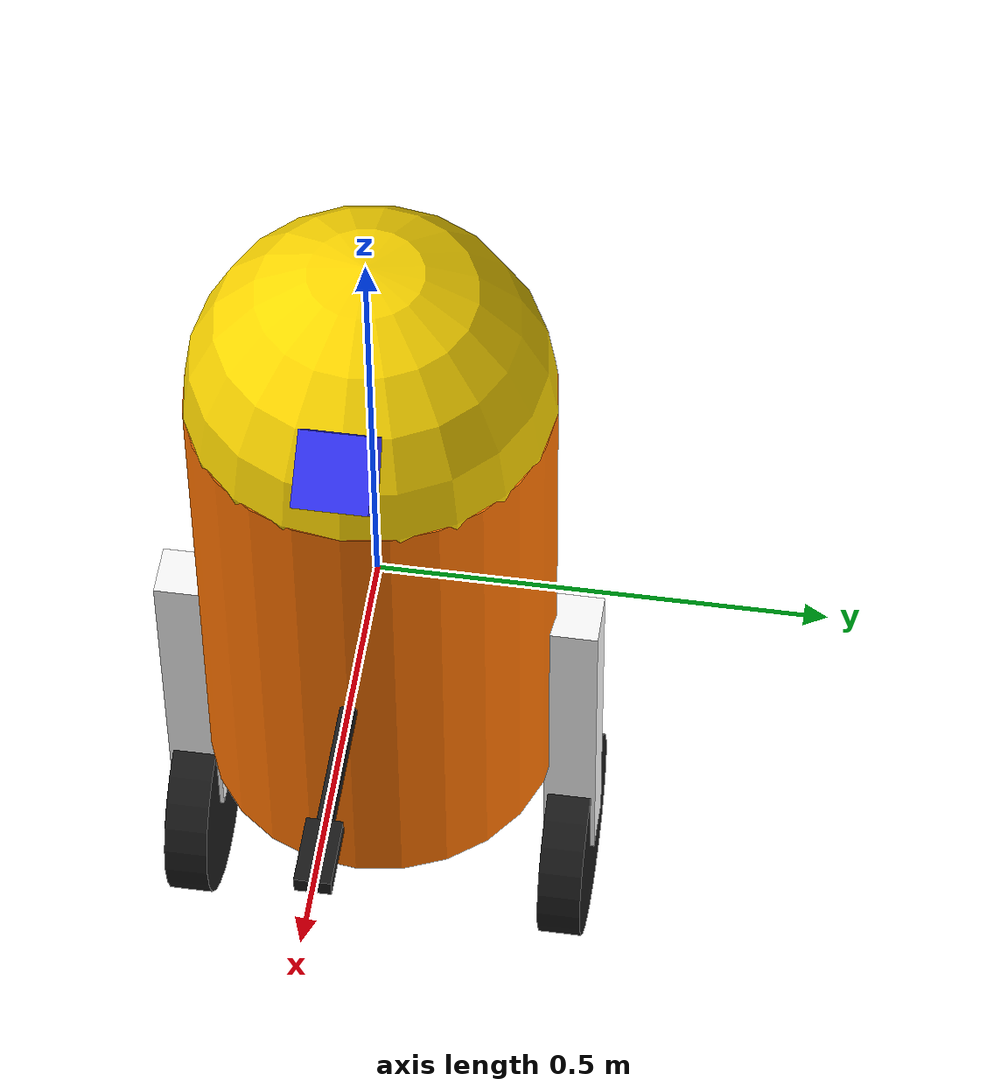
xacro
<?xml version="1.0"?>
<robot name="r2d2" xmlns:xacro="http://ros.org/wiki/xacro">

  <material name="white">
    <color rgba="1 1 1 1"/>
  </material>
  <material name="black">
    <color rgba="0.1 0.1 0.1 1"/>
  </material>
  <material name="blue">
    <color rgba="0.2 0.2 1 1"/>
  </material>
  <material name="yellow">
    <color rgba="1 0.85 0 1"/>
  </material>
  <material name="orange">
    <color rgba="1 0.45 0 1"/>
  </material>

  <!-- ================= BODY ================= -->
  <link name="base_link">
    <visual>
      <geometry>
        <cylinder length="0.6" radius="0.2"/>
      </geometry>
      <material name="orange"/>
    </visual>
    <collision>
      <geometry>
        <cylinder length="0.6" radius="0.2"/>
      </geometry>
    </collision>
    <inertial>
      <mass value="10"/>
      <inertia ixx="0.4" ixy="0" ixz="0" iyy="0.4" iyz="0" izz="0.2"/>
    </inertial>
  </link>

  <!-- ================= HEAD ================= -->
  <joint name="head_swivel" type="continuous">
    <parent link="base_link"/>
    <child link="head"/>
    <axis xyz="0 0 1"/>
    <origin xyz="0 0 0.3"/>
  </joint>

  <link name="head">
    <visual>
      <geometry>
        <sphere radius="0.2"/>
      </geometry>
      <material name="yellow"/>
    </visual>
    <collision>
      <geometry>
        <sphere radius="0.2"/>
      </geometry>
    </collision>
    <inertial>
      <mass value="1"/>
      <inertia ixx="0.01" ixy="0" ixz="0" iyy="0.01" iyz="0" izz="0.01"/>
    </inertial>
  </link>

  <joint name="eye_joint" type="fixed">
    <parent link="head"/>
    <child link="eye"/>
    <origin xyz="0.19 0 0.1" rpy="0 0.7 0"/>
  </joint>

  <link name="eye">
    <visual>
      <geometry>
        <box size="0.08 0.08 0.08"/>
      </geometry>
      <material name="blue"/>
    </visual>
    <collision>
      <geometry>
        <box size="0.08 0.08 0.08"/>
      </geometry>
    </collision>
    <inertial>
      <mass value="0.1"/>
      <inertia ixx="0.0001" ixy="0" ixz="0" iyy="0.0001" iyz="0" izz="0.0001"/>
    </inertial>
  </link>

  <!-- ================= LEGS + WHEELS (macro, left/right) ================= -->
  <xacro:macro name="leg" params="prefix reflect">
    <joint name="${prefix}_leg_joint" type="fixed">
      <parent link="base_link"/>
      <child link="${prefix}_leg"/>
      <origin xyz="0 ${reflect * 0.22} -0.25" rpy="0 0 0"/>
    </joint>

    <link name="${prefix}_leg">
      <visual>
        <geometry>
          <box size="0.06 0.06 0.4"/>
        </geometry>
        <material name="white"/>
      </visual>
      <collision>
        <geometry>
          <box size="0.06 0.06 0.4"/>
        </geometry>
      </collision>
      <inertial>
        <mass value="0.5"/>
        <inertia ixx="0.001" ixy="0" ixz="0" iyy="0.001" iyz="0" izz="0.001"/>
      </inertial>
    </link>

    <joint name="${prefix}_wheel_joint" type="continuous">
      <parent link="${prefix}_leg"/>
      <child link="${prefix}_wheel"/>
      <origin xyz="0 0 -0.22" rpy="1.5708 0 0"/>
      <axis xyz="0 0 1"/>
    </joint>

    <link name="${prefix}_wheel">
      <visual>
        <geometry>
          <cylinder length="0.05" radius="0.12"/>
        </geometry>
        <material name="black"/>
      </visual>
      <collision>
        <geometry>
          <cylinder length="0.05" radius="0.12"/>
        </geometry>
      </collision>
      <inertial>
        <mass value="0.3"/>
        <inertia ixx="0.001" ixy="0" ixz="0" iyy="0.001" iyz="0" izz="0.001"/>
      </inertial>
    </link>
  </xacro:macro>

  <xacro:leg prefix="left" reflect="1"/>
  <xacro:leg prefix="right" reflect="-1"/>

  <!-- ================= GRIPPER ARM ================= -->
  <joint name="gripper_extension" type="prismatic">
    <parent link="base_link"/>
    <child link="gripper_pole"/>
    <limit effort="1000.0" lower="-0.15" upper="0.0" velocity="0.5"/>
    <origin rpy="0 0 0" xyz="0.19 0 0"/>
    <axis xyz="1 0 0"/>
  </joint>

  <link name="gripper_pole">
    <visual>
      <geometry>
        <cylinder length="0.2" radius="0.01"/>
      </geometry>
      <origin rpy="0 1.5708 0" xyz="0.1 0 0"/>
      <material name="black"/>
    </visual>
    <collision>
      <geometry>
        <cylinder length="0.2" radius="0.01"/>
      </geometry>
      <origin rpy="0 1.5708 0" xyz="0.1 0 0"/>
    </collision>
    <inertial>
      <mass value="0.05"/>
      <inertia ixx="0.0001" ixy="0" ixz="0" iyy="0.0001" iyz="0" izz="0.0001"/>
    </inertial>
  </link>

  <joint name="left_gripper_joint" type="revolute">
    <origin rpy="0 0 0" xyz="0.2 0.01 0"/>
    <parent link="gripper_pole"/>
    <child link="left_gripper"/>
    <limit effort="1000.0" lower="0.0" upper="0.548" velocity="0.5"/>
    <axis xyz="0 0 1"/>
  </joint>

  <link name="left_gripper">
    <visual>
      <geometry>
        <box size="0.08 0.02 0.02"/>
      </geometry>
      <material name="black"/>
    </visual>
    <collision>
      <geometry>
        <box size="0.08 0.02 0.02"/>
      </geometry>
    </collision>
    <inertial>
      <mass value="0.02"/>
      <inertia ixx="0.0001" ixy="0" ixz="0" iyy="0.0001" iyz="0" izz="0.0001"/>
    </inertial>
  </link>

  <joint name="right_gripper_joint" type="revolute">
    <origin rpy="0 0 0" xyz="0.2 -0.01 0"/>
    <parent link="gripper_pole"/>
    <child link="right_gripper"/>
    <limit effort="1000.0" lower="-0.548" upper="0.0" velocity="0.5"/>
    <axis xyz="0 0 1"/>
  </joint>

  <link name="right_gripper">
    <visual>
      <geometry>
        <box size="0.08 0.02 0.02"/>
      </geometry>
      <material name="black"/>
    </visual>
    <collision>
      <geometry>
        <box size="0.08 0.02 0.02"/>
      </geometry>
    </collision>
    <inertial>
      <mass value="0.02"/>
      <inertia ixx="0.0001" ixy="0" ixz="0" iyy="0.0001" iyz="0" izz="0.0001"/>
    </inertial>
  </link>

</robot>
